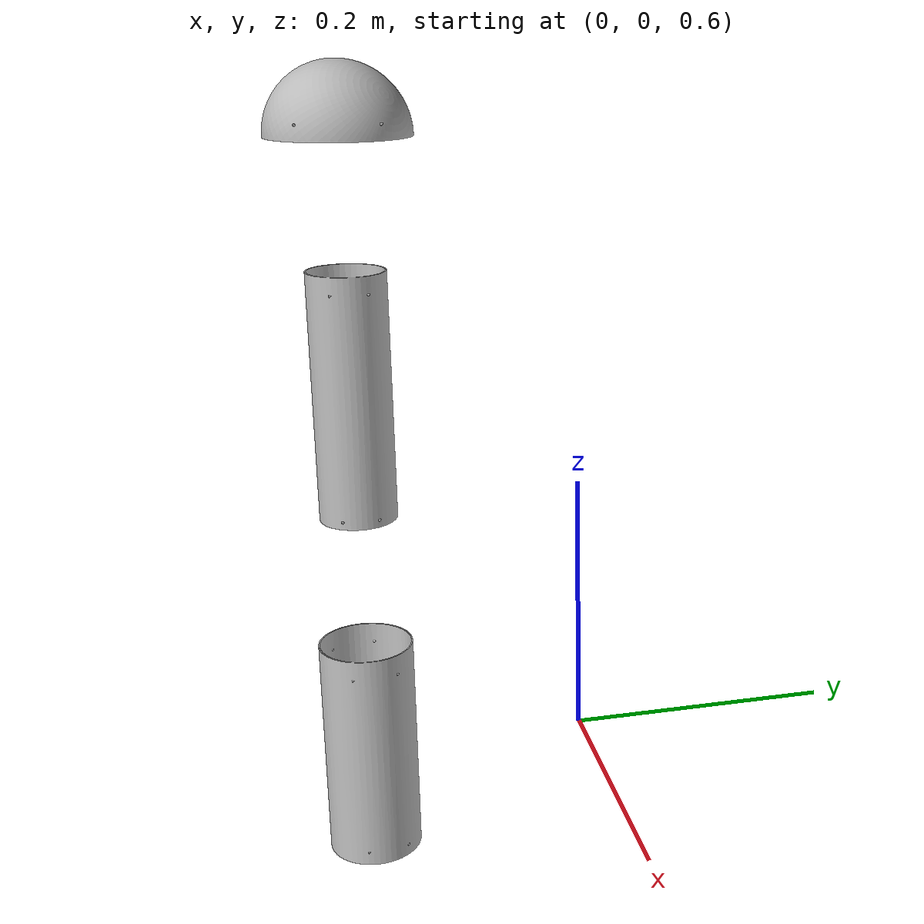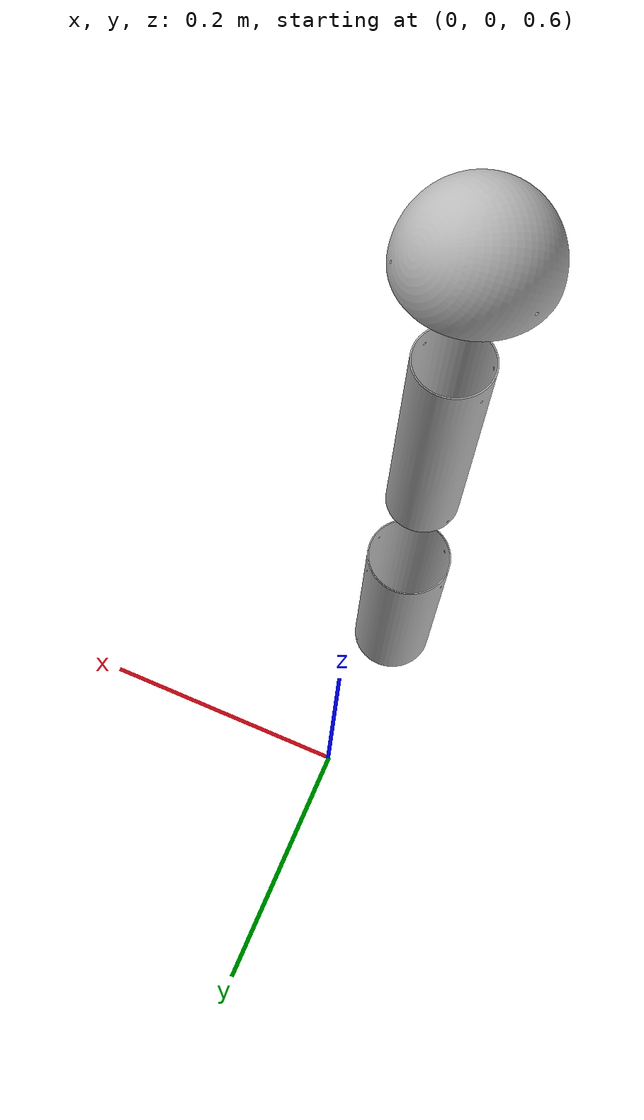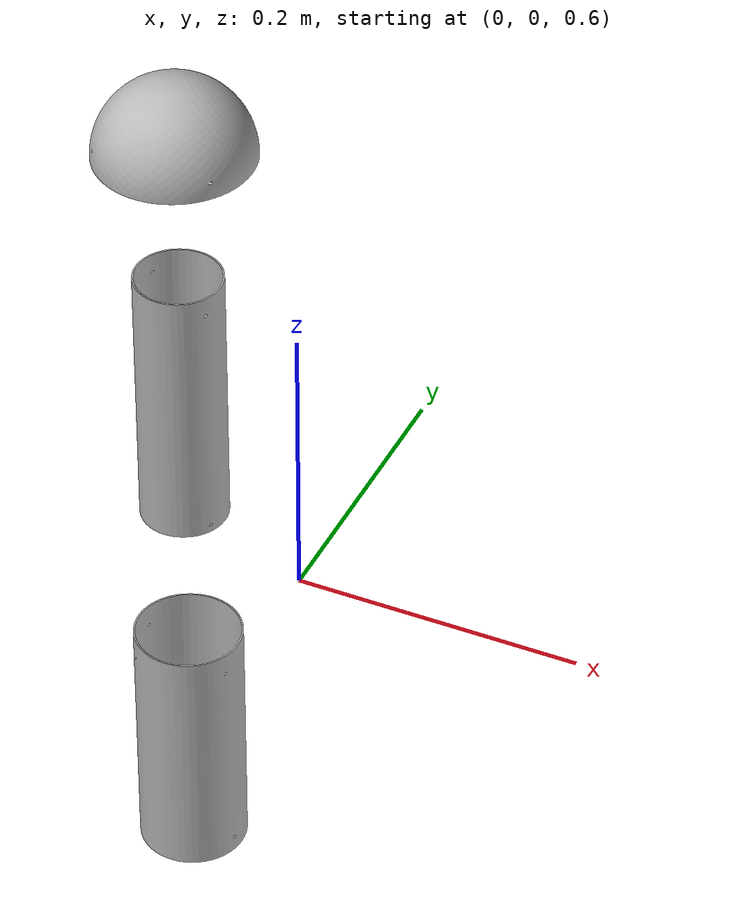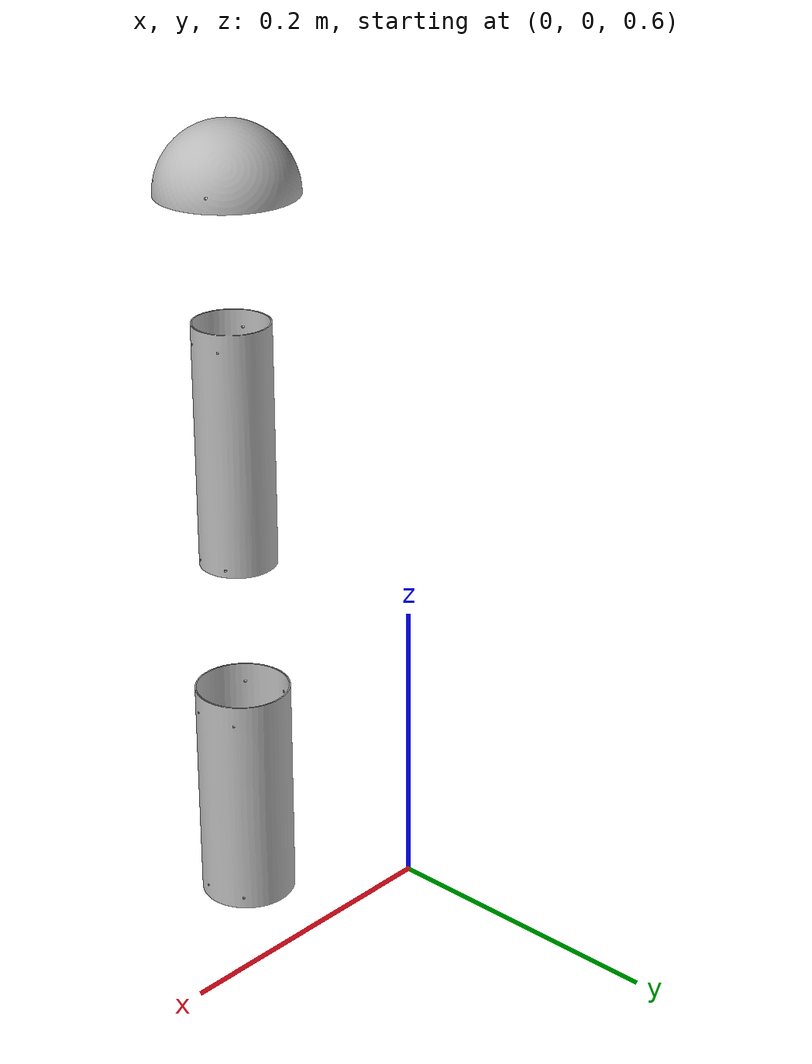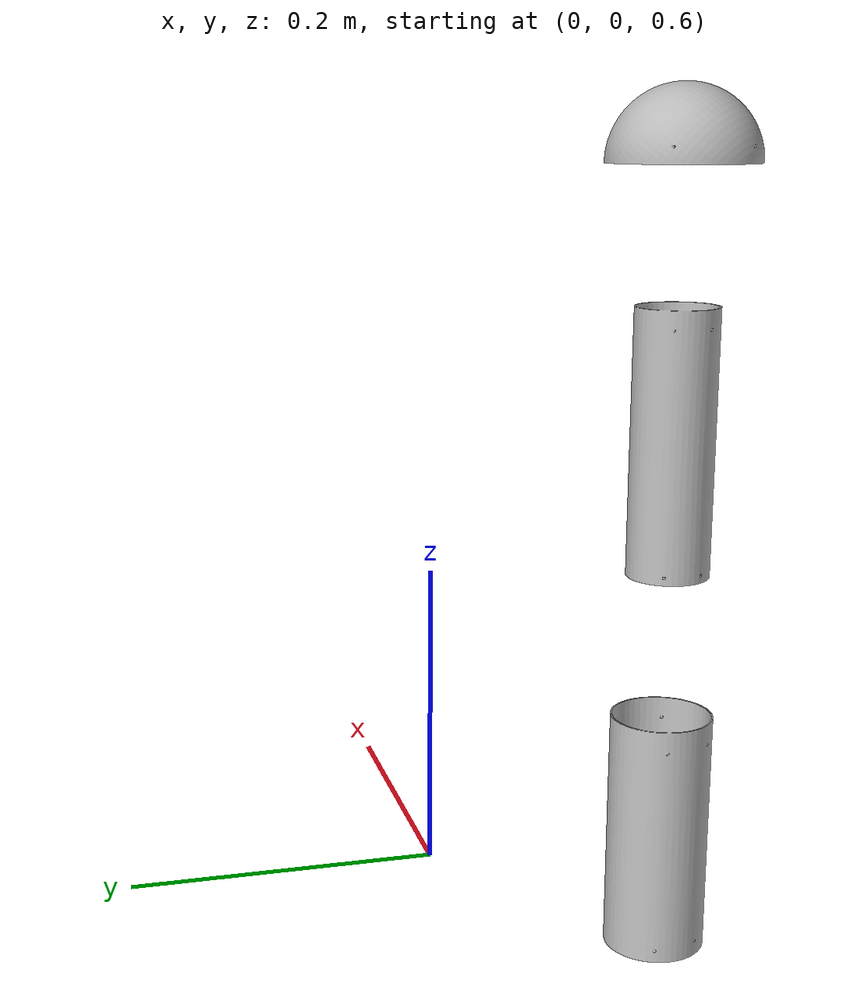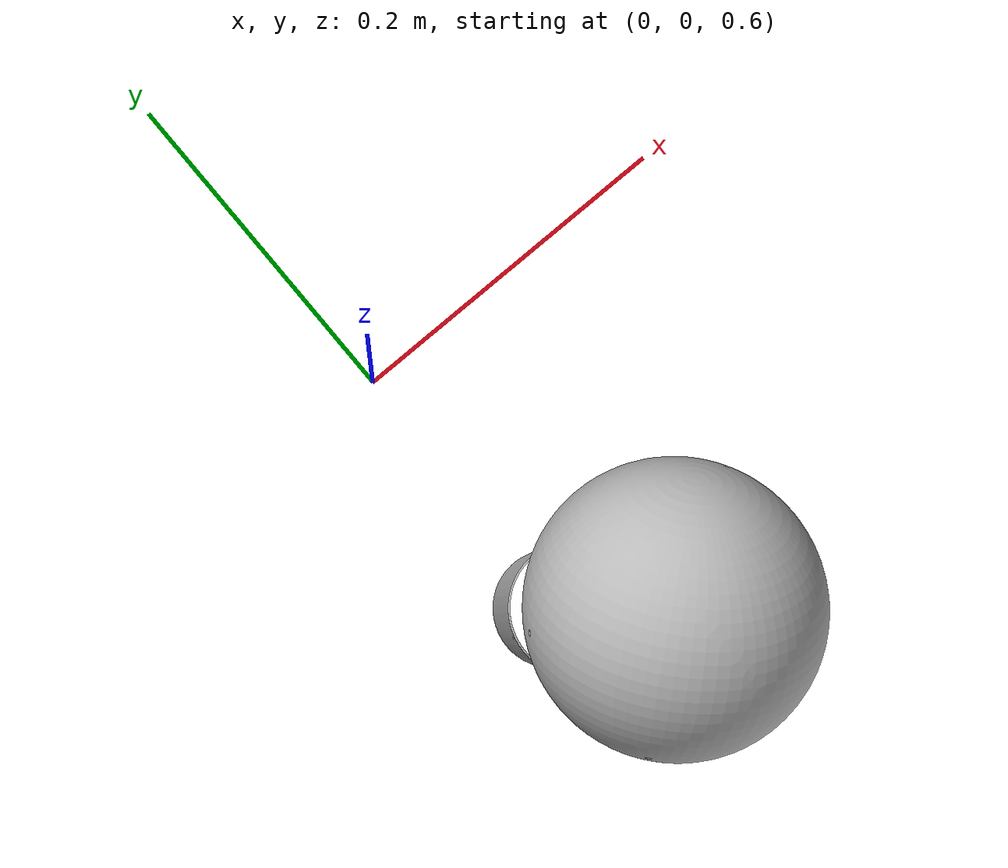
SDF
<sdf version="1.6">
	<model name="exosuit">
		<link name="upperarm">
			<self_collide>false</self_collide>
			<pose frame="">-2.240976708423975e-08 -0.16397986682428348 0.8703731150531406 0.0 -0.0 0.0</pose>
			<inertial>
				<pose frame="">0.0 0.0 0.0 0 0 0</pose>
				<mass>0.035365042126382244</mass>
				<inertia>
					<ixx>0.027861542637398526</ixx>
					<ixy>-1.3051313438317003e-10</ixy>
					<ixz>6.917971441922078e-10</ixz>
					<iyy>0.02691058529862239</iyy>
					<iyz>0.005047428483642949</iyz>
					<izz>0.0009767466962208463</izz>
				</inertia>
			</inertial>
			<collision name="upperarm_collision">
				<geometry>
					<mesh>
						<uri>model://exosuit/meshes/collisions/upperarm.dae</uri>
						<scale>0.001 0.001 0.001</scale>
					</mesh>
				</geometry>
			</collision>
			<visual name="upperarm_visual">
				<geometry>
					<mesh>
						<uri>model://exosuit/meshes/visuals/upperarm.dae</uri>
						<scale>0.001 0.001 0.001</scale>
					</mesh>
				</geometry>
			</visual>
		</link>
		<link name="lowerarm">
			<self_collide>false</self_collide>
			<pose frame="">-5.932862205467922e-07 -0.16397792686626678 0.6015102278252219 0.0 -0.0 0.0</pose>
			<inertial>
				<pose frame="">0.0 0.0 0.0 0 0 0</pose>
				<mass>0.03902618819077214</mass>
				<inertia>
					<ixx>0.015286751806616965</ixx>
					<ixy>6.457443580965006e-11</ixy>
					<ixz>1.4217519374915001e-08</ixz>
					<iyy>0.014237367079683696</iyy>
					<iyz>0.003849315904522822</iyz>
					<izz>0.0010958297131815936</izz>
				</inertia>
			</inertial>
			<collision name="lowerarm_collision">
				<geometry>
					<mesh>
						<uri>model://exosuit/meshes/collisions/lowerarm.dae</uri>
						<scale>0.001 0.001 0.001</scale>
					</mesh>
				</geometry>
			</collision>
			<visual name="lowerarm_visual">
				<geometry>
					<mesh>
						<uri>model://exosuit/meshes/visuals/lowerarm.dae</uri>
						<scale>0.001 0.001 0.001</scale>
					</mesh>
				</geometry>
			</visual>
		</link>
		<link name="shoulder">
			<self_collide>false</self_collide>
			<pose frame="">-7.908049807056098e-07 -0.16397633036233863 1.0812802560574821 0.0 -0.0 0.0</pose>
			<inertial>
				<pose frame="">0.0 0.0 0.0 0 0 0</pose>
				<mass>0.016302692469470338</mass>
				<inertia>
					<ixx>0.019515568502847802</ixx>
					<ixy>-1.996650780966558e-09</ixy>
					<ixz>1.3722221800405166e-08</ixz>
					<iyy>0.01907720473244557</iyy>
					<iyz>0.0028905394265482387</iyz>
					<izz>0.00046497426005392414</izz>
				</inertia>
			</inertial>
			<collision name="shoulder_collision">
				<geometry>
					<mesh>
						<uri>model://exosuit/meshes/collisions/shoulder.dae</uri>
						<scale>0.001 0.001 0.001</scale>
					</mesh>
				</geometry>
			</collision>
			<visual name="shoulder_visual">
				<geometry>
					<mesh>
						<uri>model://exosuit/meshes/visuals/shoulder.dae</uri>
						<scale>0.001 0.001 0.001</scale>
					</mesh>
				</geometry>
			</visual>
		</link>
		<joint name="elbow" type="revolute">
			<parent>upperarm</parent>
			<child>lowerarm</child>
			<pose frame="">5.932862208144765e-07 -2.271684660968276e-06 0.18500350889794712 0 0 0</pose>
			<axis>
				<xyz>2.064988378536746e-17 -1.0 1.4235051200718108e-15</xyz>
				<limit>
					<lower>0.0</lower>
					<upper>1.57</upper>
				</limit>
				<use_parent_model_frame>0</use_parent_model_frame>
			</axis>
		</joint>
		<joint name="shoulderJoint" type="revolute">
			<parent>shoulder</parent>
			<child>upperarm</child>
			<pose frame="">2.2409767368456846e-08 -3.317266438429556e-07 0.18614062167005357 0 0 0</pose>
			<axis>
				<xyz>0.0 -1.0 1.4235051200718108e-15</xyz>
				<limit>
					<lower>0.0</lower>
					<upper>1.57</upper>
				</limit>
				<use_parent_model_frame>0</use_parent_model_frame>
			</axis>
		</joint>
		<plugin filename="libcardsflow_gazebo_plugin.so" name="cardsflow_gazebo_plugin" />
	</model>
</sdf>
